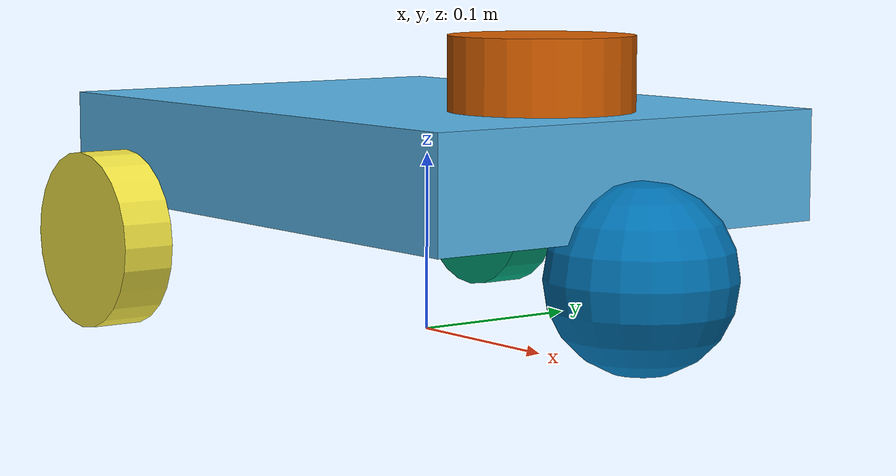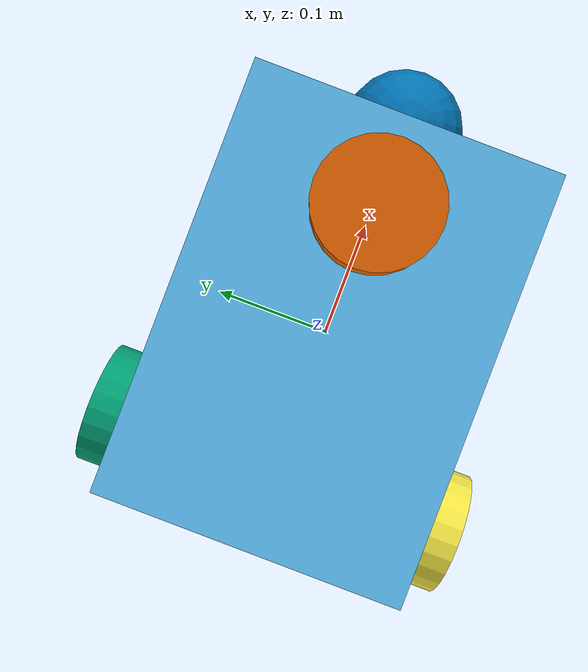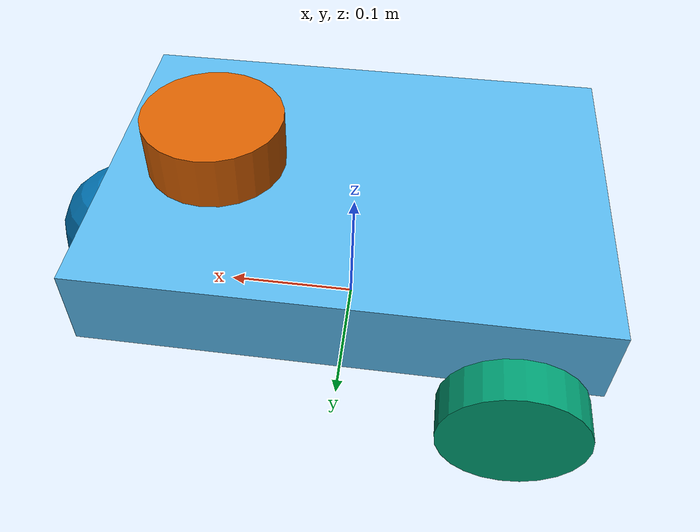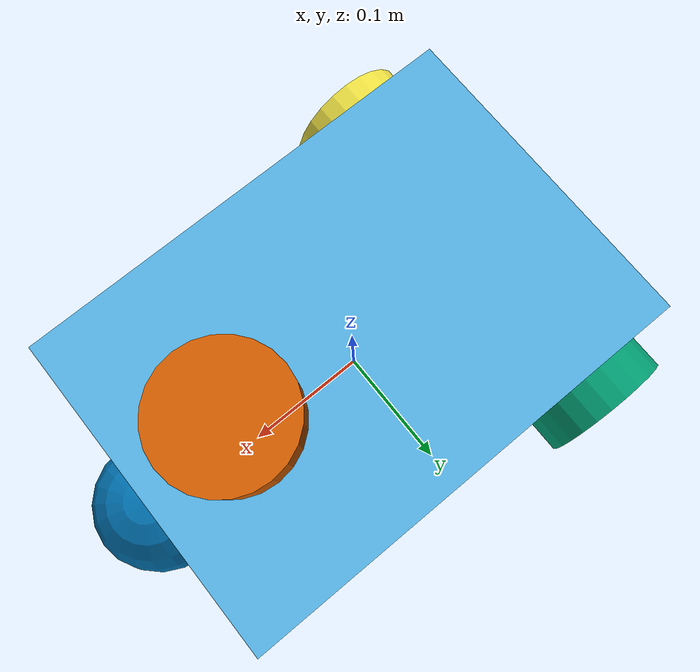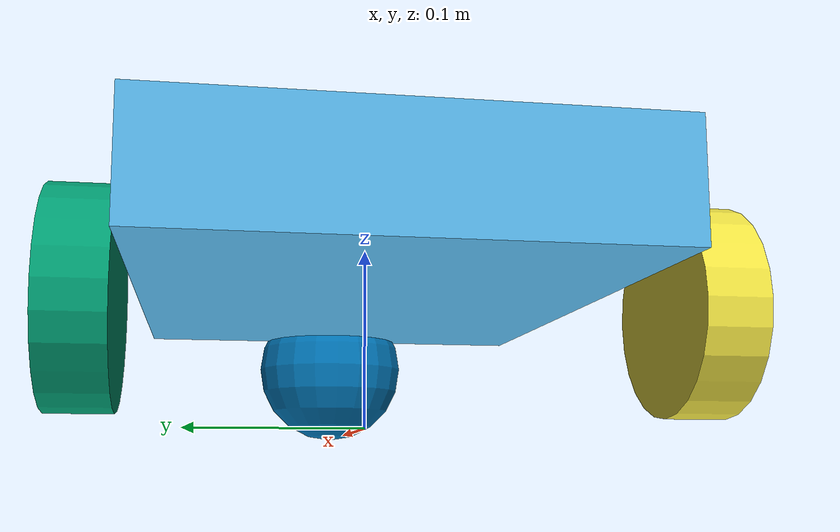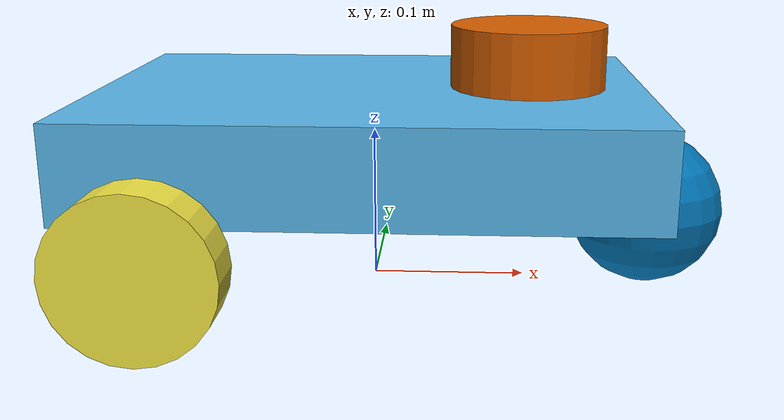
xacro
<?xml version="1.0"?>
<robot name="three_wheel_robot" xmlns:xacro="http://ros.org/wiki/xacro">

  <xacro:property name="body_mass" value="1.0"/>
  <xacro:property name="wheel_mass" value="0.2"/>
  <xacro:property name="caster_mass" value="0.1"/>
  <xacro:property name="r" value="0.05"/>
  <xacro:property name="wheel_width" value="0.03"/>
  <xacro:property name="c" value="0.35"/>
  <xacro:property name="b" value="0.25"/>
  <xacro:property name="h" value="0.06"/>
  <xacro:property name="d" value="0.05"/>

  <xacro:macro name="box_inertia" params="m x y z">
    <inertial>
      <origin xyz="0 0 0" rpy="0 0 0"/>
      <mass value="${m}"/>
      <inertia ixx="${m*(y*y+z*z)/12}" ixy="0" ixz="0" iyy="${m*(x*x+z*z)/12}" iyz="0" izz="${m*(x*x+y*y)/12}"/>
    </inertial>
  </xacro:macro>

  <xacro:macro name="cylinder_inertia" params="m r h">
    <inertial>
      <origin xyz="0 0 0" rpy="1.5707 0 0"/>
      <mass value="${m}"/>
      <inertia ixx="${m*(3*r*r+h*h)/12}" ixy="0" ixz="0" iyy="${m*(3*r*r+h*h)/12}" iyz="0" izz="${m*r*r/2}"/>
    </inertial>
  </xacro:macro>

  <link name="base_footprint"/>

  <joint name="base_joint" type="fixed">
    <parent link="base_footprint"/>
    <child link="body_link"/>
    <origin xyz="0 0 ${r + d}" rpy="0 0 0"/>
  </joint>

  <link name="body_link">
    <visual>
      <geometry><box size="${c} ${b} ${h}"/></geometry>
    </visual>
    <collision>
      <geometry><box size="${c} ${b} ${h}"/></geometry>
    </collision>
    <xacro:box_inertia m="${body_mass}" x="${c}" y="${b}" z="${h}"/>
  </link>

  <xacro:macro name="wheel" params="prefix reflect">
    <link name="wheel_${prefix}_link">
      <visual>
        <origin rpy="1.5707 0 0"/>
        <geometry><cylinder radius="${r}" length="${wheel_width}"/></geometry>
      </visual>
      <collision>
        <origin rpy="1.5707 0 0"/>
        <geometry><cylinder radius="${r}" length="${wheel_width}"/></geometry>
      </collision>
      <xacro:cylinder_inertia m="${wheel_mass}" r="${r}" h="${wheel_width}"/>
    </link>

    <joint name="wheel_${prefix}_joint" type="continuous">
      <parent link="body_link"/>
      <child link="wheel_${prefix}_link"/>
      <origin xyz="-0.12 ${reflect * 0.14} -${d}"/>
      <axis xyz="0 1 0"/>
    </joint>
  </xacro:macro>

  <xacro:wheel prefix="left" reflect="1"/>
  <xacro:wheel prefix="right" reflect="-1"/>

  <link name="caster_link">
    <visual>
      <geometry><sphere radius="${r}"/></geometry>
    </visual>
    <collision>
      <geometry><sphere radius="${r}"/></geometry>
    </collision>
    <inertial>
      <mass value="${caster_mass}"/>
      <inertia ixx="0.0001" ixy="0" ixz="0" iyy="0.0001" iyz="0" izz="0.0001"/>
    </inertial>
  </link>

  <joint name="caster_joint" type="fixed">
    <parent link="body_link"/>
    <child link="caster_link"/>
    <origin xyz="0.18 0 -${d}"/>
  </joint>

  <link name="lidar_link">
    <visual>
      <geometry>
        <cylinder radius="0.05" length="0.04"/>
      </geometry>
    </visual>

    <collision>
      <geometry>
        <cylinder radius="0.05" length="0.04"/>
      </geometry>
    </collision>

    <xacro:cylinder_inertia m="0.1" r="0.05" h="0.04"/>
  </link>

  <joint name="lidar_joint" type="fixed">
    <parent link="body_link"/>
    <child link="lidar_link"/>
    <origin xyz="0.1 0 0.05" rpy="0 0 0"/>
  </joint>

  <gazebo reference="lidar_joint">
    <preserveFixedJoint>true</preserveFixedJoint>
  </gazebo>

  <xacro:include filename="$(find mobile_robot)/model/robot.gazebo"/>

</robot>
